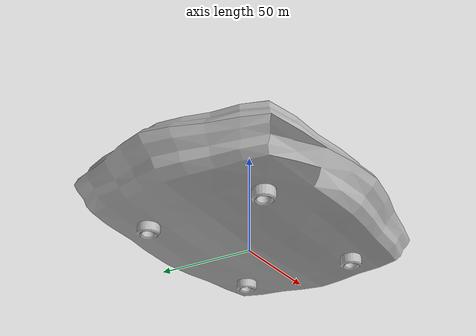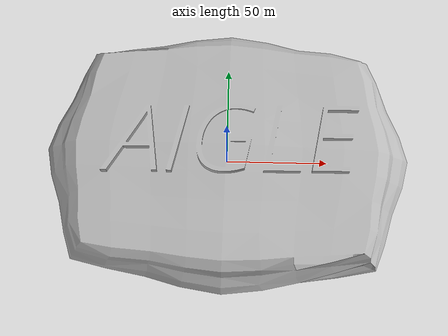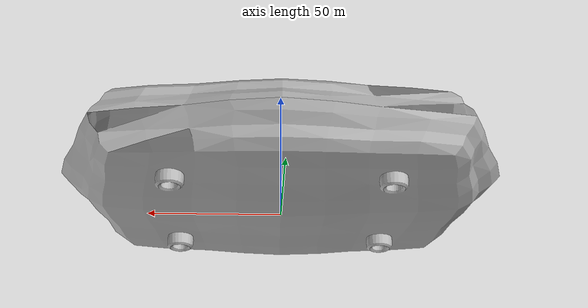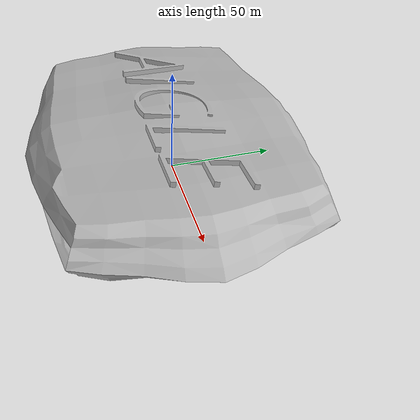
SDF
<?xml version='1.0'?>
<sdf version='1.5'>
  <model name="aigle">
    <static>true</static>

    <!-- Include Aigle link -->
    <link name ='base_carte'>
      <pose>0 0 0.04 0 0 -1.59</pose>
        <inertial>
          <mass>0.001</mass>
          <inertia>
            <ixx>1e-7</ixx>
            <iyy>1e-7</iyy>
            <izz>1e-7</izz>
            <ixy>0</ixy>
            <ixz>0</ixz>
            <iyz>0</iyz>
          </inertia>
        </inertial>

      <!-- Implement the visual texture -->
      <visual name='visual'>
        <geometry>
          <mesh>
            <uri>model://aigle/meshes/Aigle.dae</uri>
          </mesh>
        </geometry>
      </visual>
    </link>

  </model>
</sdf>
